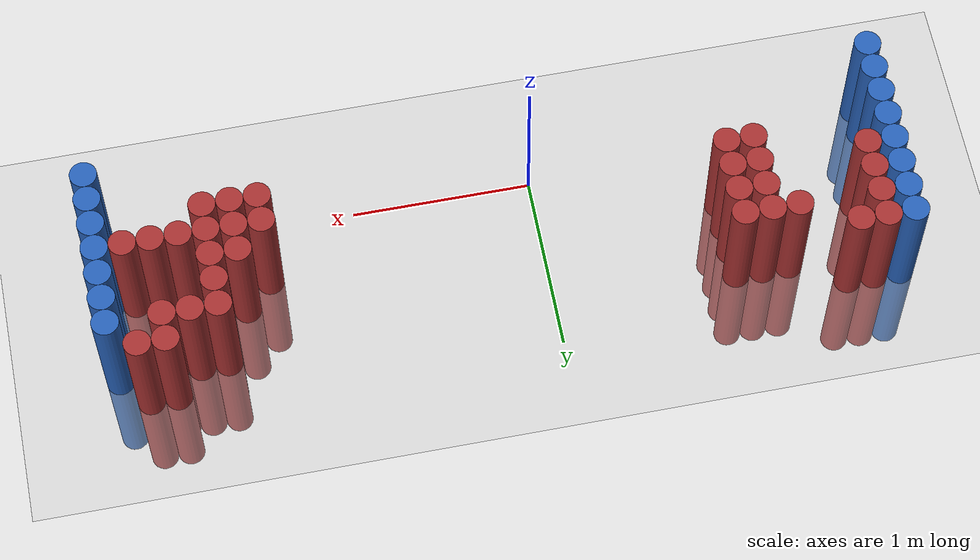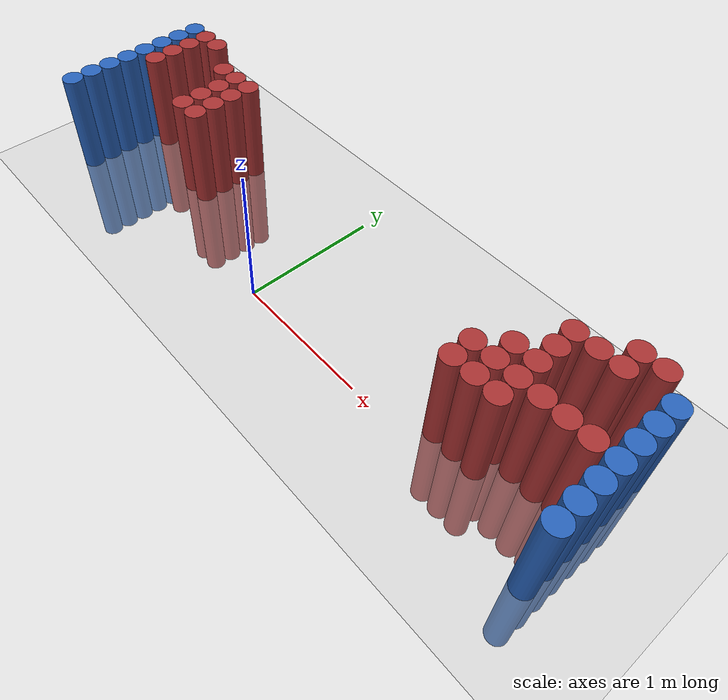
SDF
<sdf version="1.6">
 <world name="default">
  <model name="ground_plane">
   <static>1</static>
   <link name="link">
    <collision name="collision">
     <geometry><plane><normal>0 0 1</normal><size>100 100</size></plane></geometry>
     <surface><friction><ode><mu>100</mu><mu2>50</mu2></ode></friction></surface>
    </collision>
    <visual name="visual">
     <cast_shadows>0</cast_shadows>
     <geometry><plane><normal>0 0 1</normal><size>100 100</size></plane></geometry>
     <material>
      <script><uri>file://media/materials/scripts/gazebo.material</uri><name>Gazebo/Grey</name></script>
     </material>
    </visual>
   </link>
  </model>
  <model name="unit_cylinder_92">
   <static>1</static>
   <pose>2.425000 -0.125000 0.000000 0.000000 0.000000 0.000000</pose>
   <link name="link">
    <inertial>
     <mass>1</mass>
     <inertia><ixx>0.145833</ixx><ixy>0</ixy><ixz>0</ixz><iyy>0.145833</iyy><iyz>0</iyz><izz>0.125</izz></inertia>
    </inertial>
    <collision name="collision">
     <geometry><cylinder><radius>0.075000</radius><length>1.5</length></cylinder></geometry>
    </collision>
    <visual name="visual">
     <geometry><cylinder><radius>0.075000</radius><length>1.5</length></cylinder></geometry>
     <material>
      <ambient>0.152000 0.379000 0.720000 1</ambient>
      <diffuse>0.152000 0.379000 0.720000 1</diffuse>
     </material>
     <material>
      <script><name>Gazebo/Grey</name><uri>file://media/materials/scripts/gazebo.material</uri></script>
     </material>
    </visual>
   </link>
  </model>
  <model name="unit_cylinder_93">
   <static>1</static>
   <pose>-1.925000 -0.125000 0.000000 0.000000 0.000000 0.000000</pose>
   <link name="link">
    <inertial>
     <mass>1</mass>
     <inertia><ixx>0.145833</ixx><ixy>0</ixy><ixz>0</ixz><iyy>0.145833</iyy><iyz>0</iyz><izz>0.125</izz></inertia>
    </inertial>
    <collision name="collision">
     <geometry><cylinder><radius>0.075000</radius><length>1.5</length></cylinder></geometry>
    </collision>
    <visual name="visual">
     <geometry><cylinder><radius>0.075000</radius><length>1.5</length></cylinder></geometry>
     <material>
      <ambient>0.152000 0.379000 0.720000 1</ambient>
      <diffuse>0.152000 0.379000 0.720000 1</diffuse>
     </material>
     <material>
      <script><name>Gazebo/Grey</name><uri>file://media/materials/scripts/gazebo.material</uri></script>
     </material>
    </visual>
   </link>
  </model>
  <model name="unit_cylinder_94">
   <static>1</static>
   <pose>2.425000 0.025000 0.000000 0.000000 0.000000 0.000000</pose>
   <link name="link">
    <inertial>
     <mass>1</mass>
     <inertia><ixx>0.145833</ixx><ixy>0</ixy><ixz>0</ixz><iyy>0.145833</iyy><iyz>0</iyz><izz>0.125</izz></inertia>
    </inertial>
    <collision name="collision">
     <geometry><cylinder><radius>0.075000</radius><length>1.5</length></cylinder></geometry>
    </collision>
    <visual name="visual">
     <geometry><cylinder><radius>0.075000</radius><length>1.5</length></cylinder></geometry>
     <material>
      <ambient>0.152000 0.379000 0.720000 1</ambient>
      <diffuse>0.152000 0.379000 0.720000 1</diffuse>
     </material>
     <material>
      <script><name>Gazebo/Grey</name><uri>file://media/materials/scripts/gazebo.material</uri></script>
     </material>
    </visual>
   </link>
  </model>
  <model name="unit_cylinder_95">
   <static>1</static>
   <pose>-1.925000 0.025000 0.000000 0.000000 0.000000 0.000000</pose>
   <link name="link">
    <inertial>
     <mass>1</mass>
     <inertia><ixx>0.145833</ixx><ixy>0</ixy><ixz>0</ixz><iyy>0.145833</iyy><iyz>0</iyz><izz>0.125</izz></inertia>
    </inertial>
    <collision name="collision">
     <geometry><cylinder><radius>0.075000</radius><length>1.5</length></cylinder></geometry>
    </collision>
    <visual name="visual">
     <geometry><cylinder><radius>0.075000</radius><length>1.5</length></cylinder></geometry>
     <material>
      <ambient>0.152000 0.379000 0.720000 1</ambient>
      <diffuse>0.152000 0.379000 0.720000 1</diffuse>
     </material>
     <material>
      <script><name>Gazebo/Grey</name><uri>file://media/materials/scripts/gazebo.material</uri></script>
     </material>
    </visual>
   </link>
  </model>
  <model name="unit_cylinder_96">
   <static>1</static>
   <pose>-1.925000 0.175000 0.000000 0.000000 0.000000 0.000000</pose>
   <link name="link">
    <inertial>
     <mass>1</mass>
     <inertia><ixx>0.145833</ixx><ixy>0</ixy><ixz>0</ixz><iyy>0.145833</iyy><iyz>0</iyz><izz>0.125</izz></inertia>
    </inertial>
    <collision name="collision">
     <geometry><cylinder><radius>0.075000</radius><length>1.5</length></cylinder></geometry>
    </collision>
    <visual name="visual">
     <geometry><cylinder><radius>0.075000</radius><length>1.5</length></cylinder></geometry>
     <material>
      <ambient>0.152000 0.379000 0.720000 1</ambient>
      <diffuse>0.152000 0.379000 0.720000 1</diffuse>
     </material>
     <material>
      <script><name>Gazebo/Grey</name><uri>file://media/materials/scripts/gazebo.material</uri></script>
     </material>
    </visual>
   </link>
  </model>
  <model name="unit_cylinder_97">
   <static>1</static>
   <pose>-1.925000 0.325000 0.000000 0.000000 0.000000 0.000000</pose>
   <link name="link">
    <inertial>
     <mass>1</mass>
     <inertia><ixx>0.145833</ixx><ixy>0</ixy><ixz>0</ixz><iyy>0.145833</iyy><iyz>0</iyz><izz>0.125</izz></inertia>
    </inertial>
    <collision name="collision">
     <geometry><cylinder><radius>0.075000</radius><length>1.5</length></cylinder></geometry>
    </collision>
    <visual name="visual">
     <geometry><cylinder><radius>0.075000</radius><length>1.5</length></cylinder></geometry>
     <material>
      <ambient>0.152000 0.379000 0.720000 1</ambient>
      <diffuse>0.152000 0.379000 0.720000 1</diffuse>
     </material>
     <material>
      <script><name>Gazebo/Grey</name><uri>file://media/materials/scripts/gazebo.material</uri></script>
     </material>
    </visual>
   </link>
  </model>
  <model name="unit_cylinder_98">
   <static>1</static>
   <pose>-1.925000 0.475000 0.000000 0.000000 0.000000 0.000000</pose>
   <link name="link">
    <inertial>
     <mass>1</mass>
     <inertia><ixx>0.145833</ixx><ixy>0</ixy><ixz>0</ixz><iyy>0.145833</iyy><iyz>0</iyz><izz>0.125</izz></inertia>
    </inertial>
    <collision name="collision">
     <geometry><cylinder><radius>0.075000</radius><length>1.5</length></cylinder></geometry>
    </collision>
    <visual name="visual">
     <geometry><cylinder><radius>0.075000</radius><length>1.5</length></cylinder></geometry>
     <material>
      <ambient>0.152000 0.379000 0.720000 1</ambient>
      <diffuse>0.152000 0.379000 0.720000 1</diffuse>
     </material>
     <material>
      <script><name>Gazebo/Grey</name><uri>file://media/materials/scripts/gazebo.material</uri></script>
     </material>
    </visual>
   </link>
  </model>
  <model name="unit_cylinder_99">
   <static>1</static>
   <pose>-1.925000 0.625000 0.000000 0.000000 0.000000 0.000000</pose>
   <link name="link">
    <inertial>
     <mass>1</mass>
     <inertia><ixx>0.145833</ixx><ixy>0</ixy><ixz>0</ixz><iyy>0.145833</iyy><iyz>0</iyz><izz>0.125</izz></inertia>
    </inertial>
    <collision name="collision">
     <geometry><cylinder><radius>0.075000</radius><length>1.5</length></cylinder></geometry>
    </collision>
    <visual name="visual">
     <geometry><cylinder><radius>0.075000</radius><length>1.5</length></cylinder></geometry>
     <material>
      <ambient>0.152000 0.379000 0.720000 1</ambient>
      <diffuse>0.152000 0.379000 0.720000 1</diffuse>
     </material>
     <material>
      <script><name>Gazebo/Grey</name><uri>file://media/materials/scripts/gazebo.material</uri></script>
     </material>
    </visual>
   </link>
  </model>
  <model name="unit_cylinder_100">
   <static>1</static>
   <pose>-1.925000 0.775000 0.000000 0.000000 0.000000 0.000000</pose>
   <link name="link">
    <inertial>
     <mass>1</mass>
     <inertia><ixx>0.145833</ixx><ixy>0</ixy><ixz>0</ixz><iyy>0.145833</iyy><iyz>0</iyz><izz>0.125</izz></inertia>
    </inertial>
    <collision name="collision">
     <geometry><cylinder><radius>0.075000</radius><length>1.5</length></cylinder></geometry>
    </collision>
    <visual name="visual">
     <geometry><cylinder><radius>0.075000</radius><length>1.5</length></cylinder></geometry>
     <material>
      <ambient>0.152000 0.379000 0.720000 1</ambient>
      <diffuse>0.152000 0.379000 0.720000 1</diffuse>
     </material>
     <material>
      <script><name>Gazebo/Grey</name><uri>file://media/materials/scripts/gazebo.material</uri></script>
     </material>
    </visual>
   </link>
  </model>
  <model name="unit_cylinder_101">
   <static>1</static>
   <pose>-1.925000 0.925000 0.000000 0.000000 0.000000 0.000000</pose>
   <link name="link">
    <inertial>
     <mass>1</mass>
     <inertia><ixx>0.145833</ixx><ixy>0</ixy><ixz>0</ixz><iyy>0.145833</iyy><iyz>0</iyz><izz>0.125</izz></inertia>
    </inertial>
    <collision name="collision">
     <geometry><cylinder><radius>0.075000</radius><length>1.5</length></cylinder></geometry>
    </collision>
    <visual name="visual">
     <geometry><cylinder><radius>0.075000</radius><length>1.5</length></cylinder></geometry>
     <material>
      <ambient>0.152000 0.379000 0.720000 1</ambient>
      <diffuse>0.152000 0.379000 0.720000 1</diffuse>
     </material>
     <material>
      <script><name>Gazebo/Grey</name><uri>file://media/materials/scripts/gazebo.material</uri></script>
     </material>
    </visual>
   </link>
  </model>
  <model name="unit_cylinder_126">
   <static>1</static>
   <pose>-1.775000 0.475000 0.000000 0.000000 0.000000 0.000000</pose>
   <link name="link">
    <inertial>
     <mass>1</mass>
     <inertia><ixx>0.145833</ixx><ixy>0</ixy><ixz>0</ixz><iyy>0.145833</iyy><iyz>0</iyz><izz>0.125</izz></inertia>
    </inertial>
    <collision name="collision">
     <geometry><cylinder><radius>0.075000</radius><length>1.5</length></cylinder></geometry>
    </collision>
    <visual name="visual">
     <geometry><cylinder><radius>0.075000</radius><length>1.5</length></cylinder></geometry>
     <material>
      <ambient>0.648000 0.192000 0.192000 1</ambient>
      <diffuse>0.648000 0.192000 0.192000 1</diffuse>
     </material>
     <material>
      <script><name>Gazebo/Grey</name><uri>file://media/materials/scripts/gazebo.material</uri></script>
     </material>
    </visual>
   </link>
  </model>
  <model name="unit_cylinder_127">
   <static>1</static>
   <pose>-1.775000 0.625000 0.000000 0.000000 0.000000 0.000000</pose>
   <link name="link">
    <inertial>
     <mass>1</mass>
     <inertia><ixx>0.145833</ixx><ixy>0</ixy><ixz>0</ixz><iyy>0.145833</iyy><iyz>0</iyz><izz>0.125</izz></inertia>
    </inertial>
    <collision name="collision">
     <geometry><cylinder><radius>0.075000</radius><length>1.5</length></cylinder></geometry>
    </collision>
    <visual name="visual">
     <geometry><cylinder><radius>0.075000</radius><length>1.5</length></cylinder></geometry>
     <material>
      <ambient>0.648000 0.192000 0.192000 1</ambient>
      <diffuse>0.648000 0.192000 0.192000 1</diffuse>
     </material>
     <material>
      <script><name>Gazebo/Grey</name><uri>file://media/materials/scripts/gazebo.material</uri></script>
     </material>
    </visual>
   </link>
  </model>
  <model name="unit_cylinder_128">
   <static>1</static>
   <pose>-1.775000 0.775000 0.000000 0.000000 0.000000 0.000000</pose>
   <link name="link">
    <inertial>
     <mass>1</mass>
     <inertia><ixx>0.145833</ixx><ixy>0</ixy><ixz>0</ixz><iyy>0.145833</iyy><iyz>0</iyz><izz>0.125</izz></inertia>
    </inertial>
    <collision name="collision">
     <geometry><cylinder><radius>0.075000</radius><length>1.5</length></cylinder></geometry>
    </collision>
    <visual name="visual">
     <geometry><cylinder><radius>0.075000</radius><length>1.5</length></cylinder></geometry>
     <material>
      <ambient>0.648000 0.192000 0.192000 1</ambient>
      <diffuse>0.648000 0.192000 0.192000 1</diffuse>
     </material>
     <material>
      <script><name>Gazebo/Grey</name><uri>file://media/materials/scripts/gazebo.material</uri></script>
     </material>
    </visual>
   </link>
  </model>
  <model name="unit_cylinder_129">
   <static>1</static>
   <pose>-1.775000 0.925000 0.000000 0.000000 0.000000 0.000000</pose>
   <link name="link">
    <inertial>
     <mass>1</mass>
     <inertia><ixx>0.145833</ixx><ixy>0</ixy><ixz>0</ixz><iyy>0.145833</iyy><iyz>0</iyz><izz>0.125</izz></inertia>
    </inertial>
    <collision name="collision">
     <geometry><cylinder><radius>0.075000</radius><length>1.5</length></cylinder></geometry>
    </collision>
    <visual name="visual">
     <geometry><cylinder><radius>0.075000</radius><length>1.5</length></cylinder></geometry>
     <material>
      <ambient>0.648000 0.192000 0.192000 1</ambient>
      <diffuse>0.648000 0.192000 0.192000 1</diffuse>
     </material>
     <material>
      <script><name>Gazebo/Grey</name><uri>file://media/materials/scripts/gazebo.material</uri></script>
     </material>
    </visual>
   </link>
  </model>
  <model name="unit_cylinder_138">
   <static>1</static>
   <pose>-1.625000 0.925000 0.000000 0.000000 0.000000 0.000000</pose>
   <link name="link">
    <inertial>
     <mass>1</mass>
     <inertia><ixx>0.145833</ixx><ixy>0</ixy><ixz>0</ixz><iyy>0.145833</iyy><iyz>0</iyz><izz>0.125</izz></inertia>
    </inertial>
    <collision name="collision">
     <geometry><cylinder><radius>0.075000</radius><length>1.5</length></cylinder></geometry>
    </collision>
    <visual name="visual">
     <geometry><cylinder><radius>0.075000</radius><length>1.5</length></cylinder></geometry>
     <material>
      <ambient>0.648000 0.192000 0.192000 1</ambient>
      <diffuse>0.648000 0.192000 0.192000 1</diffuse>
     </material>
     <material>
      <script><name>Gazebo/Grey</name><uri>file://media/materials/scripts/gazebo.material</uri></script>
     </material>
    </visual>
   </link>
  </model>
  <model name="unit_cylinder_148">
   <static>1</static>
   <pose>-1.325000 0.775000 0.000000 0.000000 0.000000 0.000000</pose>
   <link name="link">
    <inertial>
     <mass>1</mass>
     <inertia><ixx>0.145833</ixx><ixy>0</ixy><ixz>0</ixz><iyy>0.145833</iyy><iyz>0</iyz><izz>0.125</izz></inertia>
    </inertial>
    <collision name="collision">
     <geometry><cylinder><radius>0.075000</radius><length>1.5</length></cylinder></geometry>
    </collision>
    <visual name="visual">
     <geometry><cylinder><radius>0.075000</radius><length>1.5</length></cylinder></geometry>
     <material>
      <ambient>0.648000 0.192000 0.192000 1</ambient>
      <diffuse>0.648000 0.192000 0.192000 1</diffuse>
     </material>
     <material>
      <script><name>Gazebo/Grey</name><uri>file://media/materials/scripts/gazebo.material</uri></script>
     </material>
    </visual>
   </link>
  </model>
  <model name="unit_cylinder_151">
   <static>1</static>
   <pose>-1.175000 0.325000 0.000000 0.000000 0.000000 0.000000</pose>
   <link name="link">
    <inertial>
     <mass>1</mass>
     <inertia><ixx>0.145833</ixx><ixy>0</ixy><ixz>0</ixz><iyy>0.145833</iyy><iyz>0</iyz><izz>0.125</izz></inertia>
    </inertial>
    <collision name="collision">
     <geometry><cylinder><radius>0.075000</radius><length>1.5</length></cylinder></geometry>
    </collision>
    <visual name="visual">
     <geometry><cylinder><radius>0.075000</radius><length>1.5</length></cylinder></geometry>
     <material>
      <ambient>0.648000 0.192000 0.192000 1</ambient>
      <diffuse>0.648000 0.192000 0.192000 1</diffuse>
     </material>
     <material>
      <script><name>Gazebo/Grey</name><uri>file://media/materials/scripts/gazebo.material</uri></script>
     </material>
    </visual>
   </link>
  </model>
  <model name="unit_cylinder_152">
   <static>1</static>
   <pose>-1.175000 0.475000 0.000000 0.000000 0.000000 0.000000</pose>
   <link name="link">
    <inertial>
     <mass>1</mass>
     <inertia><ixx>0.145833</ixx><ixy>0</ixy><ixz>0</ixz><iyy>0.145833</iyy><iyz>0</iyz><izz>0.125</izz></inertia>
    </inertial>
    <collision name="collision">
     <geometry><cylinder><radius>0.075000</radius><length>1.5</length></cylinder></geometry>
    </collision>
    <visual name="visual">
     <geometry><cylinder><radius>0.075000</radius><length>1.5</length></cylinder></geometry>
     <material>
      <ambient>0.648000 0.192000 0.192000 1</ambient>
      <diffuse>0.648000 0.192000 0.192000 1</diffuse>
     </material>
     <material>
      <script><name>Gazebo/Grey</name><uri>file://media/materials/scripts/gazebo.material</uri></script>
     </material>
    </visual>
   </link>
  </model>
  <model name="unit_cylinder_153">
   <static>1</static>
   <pose>-1.175000 0.625000 0.000000 0.000000 0.000000 0.000000</pose>
   <link name="link">
    <inertial>
     <mass>1</mass>
     <inertia><ixx>0.145833</ixx><ixy>0</ixy><ixz>0</ixz><iyy>0.145833</iyy><iyz>0</iyz><izz>0.125</izz></inertia>
    </inertial>
    <collision name="collision">
     <geometry><cylinder><radius>0.075000</radius><length>1.5</length></cylinder></geometry>
    </collision>
    <visual name="visual">
     <geometry><cylinder><radius>0.075000</radius><length>1.5</length></cylinder></geometry>
     <material>
      <ambient>0.648000 0.192000 0.192000 1</ambient>
      <diffuse>0.648000 0.192000 0.192000 1</diffuse>
     </material>
     <material>
      <script><name>Gazebo/Grey</name><uri>file://media/materials/scripts/gazebo.material</uri></script>
     </material>
    </visual>
   </link>
  </model>
  <model name="unit_cylinder_154">
   <static>1</static>
   <pose>-1.175000 0.775000 0.000000 0.000000 0.000000 0.000000</pose>
   <link name="link">
    <inertial>
     <mass>1</mass>
     <inertia><ixx>0.145833</ixx><ixy>0</ixy><ixz>0</ixz><iyy>0.145833</iyy><iyz>0</iyz><izz>0.125</izz></inertia>
    </inertial>
    <collision name="collision">
     <geometry><cylinder><radius>0.075000</radius><length>1.5</length></cylinder></geometry>
    </collision>
    <visual name="visual">
     <geometry><cylinder><radius>0.075000</radius><length>1.5</length></cylinder></geometry>
     <material>
      <ambient>0.648000 0.192000 0.192000 1</ambient>
      <diffuse>0.648000 0.192000 0.192000 1</diffuse>
     </material>
     <material>
      <script><name>Gazebo/Grey</name><uri>file://media/materials/scripts/gazebo.material</uri></script>
     </material>
    </visual>
   </link>
  </model>
  <model name="unit_cylinder_158">
   <static>1</static>
   <pose>-1.025000 0.325000 0.000000 0.000000 0.000000 0.000000</pose>
   <link name="link">
    <inertial>
     <mass>1</mass>
     <inertia><ixx>0.145833</ixx><ixy>0</ixy><ixz>0</ixz><iyy>0.145833</iyy><iyz>0</iyz><izz>0.125</izz></inertia>
    </inertial>
    <collision name="collision">
     <geometry><cylinder><radius>0.075000</radius><length>1.5</length></cylinder></geometry>
    </collision>
    <visual name="visual">
     <geometry><cylinder><radius>0.075000</radius><length>1.5</length></cylinder></geometry>
     <material>
      <ambient>0.648000 0.192000 0.192000 1</ambient>
      <diffuse>0.648000 0.192000 0.192000 1</diffuse>
     </material>
     <material>
      <script><name>Gazebo/Grey</name><uri>file://media/materials/scripts/gazebo.material</uri></script>
     </material>
    </visual>
   </link>
  </model>
  <model name="unit_cylinder_159">
   <static>1</static>
   <pose>-1.025000 0.475000 0.000000 0.000000 0.000000 0.000000</pose>
   <link name="link">
    <inertial>
     <mass>1</mass>
     <inertia><ixx>0.145833</ixx><ixy>0</ixy><ixz>0</ixz><iyy>0.145833</iyy><iyz>0</iyz><izz>0.125</izz></inertia>
    </inertial>
    <collision name="collision">
     <geometry><cylinder><radius>0.075000</radius><length>1.5</length></cylinder></geometry>
    </collision>
    <visual name="visual">
     <geometry><cylinder><radius>0.075000</radius><length>1.5</length></cylinder></geometry>
     <material>
      <ambient>0.648000 0.192000 0.192000 1</ambient>
      <diffuse>0.648000 0.192000 0.192000 1</diffuse>
     </material>
     <material>
      <script><name>Gazebo/Grey</name><uri>file://media/materials/scripts/gazebo.material</uri></script>
     </material>
    </visual>
   </link>
  </model>
  <model name="unit_cylinder_160">
   <static>1</static>
   <pose>-1.025000 0.625000 0.000000 0.000000 0.000000 0.000000</pose>
   <link name="link">
    <inertial>
     <mass>1</mass>
     <inertia><ixx>0.145833</ixx><ixy>0</ixy><ixz>0</ixz><iyy>0.145833</iyy><iyz>0</iyz><izz>0.125</izz></inertia>
    </inertial>
    <collision name="collision">
     <geometry><cylinder><radius>0.075000</radius><length>1.5</length></cylinder></geometry>
    </collision>
    <visual name="visual">
     <geometry><cylinder><radius>0.075000</radius><length>1.5</length></cylinder></geometry>
     <material>
      <ambient>0.648000 0.192000 0.192000 1</ambient>
      <diffuse>0.648000 0.192000 0.192000 1</diffuse>
     </material>
     <material>
      <script><name>Gazebo/Grey</name><uri>file://media/materials/scripts/gazebo.material</uri></script>
     </material>
    </visual>
   </link>
  </model>
  <model name="unit_cylinder_161">
   <static>1</static>
   <pose>-1.025000 0.775000 0.000000 0.000000 0.000000 0.000000</pose>
   <link name="link">
    <inertial>
     <mass>1</mass>
     <inertia><ixx>0.145833</ixx><ixy>0</ixy><ixz>0</ixz><iyy>0.145833</iyy><iyz>0</iyz><izz>0.125</izz></inertia>
    </inertial>
    <collision name="collision">
     <geometry><cylinder><radius>0.075000</radius><length>1.5</length></cylinder></geometry>
    </collision>
    <visual name="visual">
     <geometry><cylinder><radius>0.075000</radius><length>1.5</length></cylinder></geometry>
     <material>
      <ambient>0.648000 0.192000 0.192000 1</ambient>
      <diffuse>0.648000 0.192000 0.192000 1</diffuse>
     </material>
     <material>
      <script><name>Gazebo/Grey</name><uri>file://media/materials/scripts/gazebo.material</uri></script>
     </material>
    </visual>
   </link>
  </model>
  <model name="unit_cylinder_199">
   <static>1</static>
   <pose>1.525000 0.175000 0.000000 0.000000 0.000000 0.000000</pose>
   <link name="link">
    <inertial>
     <mass>1</mass>
     <inertia><ixx>0.145833</ixx><ixy>0</ixy><ixz>0</ixz><iyy>0.145833</iyy><iyz>0</iyz><izz>0.125</izz></inertia>
    </inertial>
    <collision name="collision">
     <geometry><cylinder><radius>0.075000</radius><length>1.5</length></cylinder></geometry>
    </collision>
    <visual name="visual">
     <geometry><cylinder><radius>0.075000</radius><length>1.5</length></cylinder></geometry>
     <material>
      <ambient>0.648000 0.192000 0.192000 1</ambient>
      <diffuse>0.648000 0.192000 0.192000 1</diffuse>
     </material>
     <material>
      <script><name>Gazebo/Grey</name><uri>file://media/materials/scripts/gazebo.material</uri></script>
     </material>
    </visual>
   </link>
  </model>
  <model name="unit_cylinder_200">
   <static>1</static>
   <pose>1.525000 0.325000 0.000000 0.000000 0.000000 0.000000</pose>
   <link name="link">
    <inertial>
     <mass>1</mass>
     <inertia><ixx>0.145833</ixx><ixy>0</ixy><ixz>0</ixz><iyy>0.145833</iyy><iyz>0</iyz><izz>0.125</izz></inertia>
    </inertial>
    <collision name="collision">
     <geometry><cylinder><radius>0.075000</radius><length>1.5</length></cylinder></geometry>
    </collision>
    <visual name="visual">
     <geometry><cylinder><radius>0.075000</radius><length>1.5</length></cylinder></geometry>
     <material>
      <ambient>0.648000 0.192000 0.192000 1</ambient>
      <diffuse>0.648000 0.192000 0.192000 1</diffuse>
     </material>
     <material>
      <script><name>Gazebo/Grey</name><uri>file://media/materials/scripts/gazebo.material</uri></script>
     </material>
    </visual>
   </link>
  </model>
  <model name="unit_cylinder_205">
   <static>1</static>
   <pose>1.675000 0.175000 0.000000 0.000000 0.000000 0.000000</pose>
   <link name="link">
    <inertial>
     <mass>1</mass>
     <inertia><ixx>0.145833</ixx><ixy>0</ixy><ixz>0</ixz><iyy>0.145833</iyy><iyz>0</iyz><izz>0.125</izz></inertia>
    </inertial>
    <collision name="collision">
     <geometry><cylinder><radius>0.075000</radius><length>1.5</length></cylinder></geometry>
    </collision>
    <visual name="visual">
     <geometry><cylinder><radius>0.075000</radius><length>1.5</length></cylinder></geometry>
     <material>
      <ambient>0.648000 0.192000 0.192000 1</ambient>
      <diffuse>0.648000 0.192000 0.192000 1</diffuse>
     </material>
     <material>
      <script><name>Gazebo/Grey</name><uri>file://media/materials/scripts/gazebo.material</uri></script>
     </material>
    </visual>
   </link>
  </model>
  <model name="unit_cylinder_206">
   <static>1</static>
   <pose>1.675000 0.325000 0.000000 0.000000 0.000000 0.000000</pose>
   <link name="link">
    <inertial>
     <mass>1</mass>
     <inertia><ixx>0.145833</ixx><ixy>0</ixy><ixz>0</ixz><iyy>0.145833</iyy><iyz>0</iyz><izz>0.125</izz></inertia>
    </inertial>
    <collision name="collision">
     <geometry><cylinder><radius>0.075000</radius><length>1.5</length></cylinder></geometry>
    </collision>
    <visual name="visual">
     <geometry><cylinder><radius>0.075000</radius><length>1.5</length></cylinder></geometry>
     <material>
      <ambient>0.648000 0.192000 0.192000 1</ambient>
      <diffuse>0.648000 0.192000 0.192000 1</diffuse>
     </material>
     <material>
      <script><name>Gazebo/Grey</name><uri>file://media/materials/scripts/gazebo.material</uri></script>
     </material>
    </visual>
   </link>
  </model>
  <model name="unit_cylinder_207">
   <static>1</static>
   <pose>1.675000 0.475000 0.000000 0.000000 0.000000 0.000000</pose>
   <link name="link">
    <inertial>
     <mass>1</mass>
     <inertia><ixx>0.145833</ixx><ixy>0</ixy><ixz>0</ixz><iyy>0.145833</iyy><iyz>0</iyz><izz>0.125</izz></inertia>
    </inertial>
    <collision name="collision">
     <geometry><cylinder><radius>0.075000</radius><length>1.5</length></cylinder></geometry>
    </collision>
    <visual name="visual">
     <geometry><cylinder><radius>0.075000</radius><length>1.5</length></cylinder></geometry>
     <material>
      <ambient>0.648000 0.192000 0.192000 1</ambient>
      <diffuse>0.648000 0.192000 0.192000 1</diffuse>
     </material>
     <material>
      <script><name>Gazebo/Grey</name><uri>file://media/materials/scripts/gazebo.material</uri></script>
     </material>
    </visual>
   </link>
  </model>
  <model name="unit_cylinder_211">
   <static>1</static>
   <pose>1.825000 0.175000 0.000000 0.000000 0.000000 0.000000</pose>
   <link name="link">
    <inertial>
     <mass>1</mass>
     <inertia><ixx>0.145833</ixx><ixy>0</ixy><ixz>0</ixz><iyy>0.145833</iyy><iyz>0</iyz><izz>0.125</izz></inertia>
    </inertial>
    <collision name="collision">
     <geometry><cylinder><radius>0.075000</radius><length>1.5</length></cylinder></geometry>
    </collision>
    <visual name="visual">
     <geometry><cylinder><radius>0.075000</radius><length>1.5</length></cylinder></geometry>
     <material>
      <ambient>0.648000 0.192000 0.192000 1</ambient>
      <diffuse>0.648000 0.192000 0.192000 1</diffuse>
     </material>
     <material>
      <script><name>Gazebo/Grey</name><uri>file://media/materials/scripts/gazebo.material</uri></script>
     </material>
    </visual>
   </link>
  </model>
  <model name="unit_cylinder_212">
   <static>1</static>
   <pose>1.825000 0.325000 0.000000 0.000000 0.000000 0.000000</pose>
   <link name="link">
    <inertial>
     <mass>1</mass>
     <inertia><ixx>0.145833</ixx><ixy>0</ixy><ixz>0</ixz><iyy>0.145833</iyy><iyz>0</iyz><izz>0.125</izz></inertia>
    </inertial>
    <collision name="collision">
     <geometry><cylinder><radius>0.075000</radius><length>1.5</length></cylinder></geometry>
    </collision>
    <visual name="visual">
     <geometry><cylinder><radius>0.075000</radius><length>1.5</length></cylinder></geometry>
     <material>
      <ambient>0.648000 0.192000 0.192000 1</ambient>
      <diffuse>0.648000 0.192000 0.192000 1</diffuse>
     </material>
     <material>
      <script><name>Gazebo/Grey</name><uri>file://media/materials/scripts/gazebo.material</uri></script>
     </material>
    </visual>
   </link>
  </model>
  <model name="unit_cylinder_213">
   <static>1</static>
   <pose>1.825000 0.475000 0.000000 0.000000 0.000000 0.000000</pose>
   <link name="link">
    <inertial>
     <mass>1</mass>
     <inertia><ixx>0.145833</ixx><ixy>0</ixy><ixz>0</ixz><iyy>0.145833</iyy><iyz>0</iyz><izz>0.125</izz></inertia>
    </inertial>
    <collision name="collision">
     <geometry><cylinder><radius>0.075000</radius><length>1.5</length></cylinder></geometry>
    </collision>
    <visual name="visual">
     <geometry><cylinder><radius>0.075000</radius><length>1.5</length></cylinder></geometry>
     <material>
      <ambient>0.648000 0.192000 0.192000 1</ambient>
      <diffuse>0.648000 0.192000 0.192000 1</diffuse>
     </material>
     <material>
      <script><name>Gazebo/Grey</name><uri>file://media/materials/scripts/gazebo.material</uri></script>
     </material>
    </visual>
   </link>
  </model>
  <model name="unit_cylinder_214">
   <static>1</static>
   <pose>1.825000 0.625000 0.000000 0.000000 0.000000 0.000000</pose>
   <link name="link">
    <inertial>
     <mass>1</mass>
     <inertia><ixx>0.145833</ixx><ixy>0</ixy><ixz>0</ixz><iyy>0.145833</iyy><iyz>0</iyz><izz>0.125</izz></inertia>
    </inertial>
    <collision name="collision">
     <geometry><cylinder><radius>0.075000</radius><length>1.5</length></cylinder></geometry>
    </collision>
    <visual name="visual">
     <geometry><cylinder><radius>0.075000</radius><length>1.5</length></cylinder></geometry>
     <material>
      <ambient>0.648000 0.192000 0.192000 1</ambient>
      <diffuse>0.648000 0.192000 0.192000 1</diffuse>
     </material>
     <material>
      <script><name>Gazebo/Grey</name><uri>file://media/materials/scripts/gazebo.material</uri></script>
     </material>
    </visual>
   </link>
  </model>
  <model name="unit_cylinder_215">
   <static>1</static>
   <pose>1.825000 0.775000 0.000000 0.000000 0.000000 0.000000</pose>
   <link name="link">
    <inertial>
     <mass>1</mass>
     <inertia><ixx>0.145833</ixx><ixy>0</ixy><ixz>0</ixz><iyy>0.145833</iyy><iyz>0</iyz><izz>0.125</izz></inertia>
    </inertial>
    <collision name="collision">
     <geometry><cylinder><radius>0.075000</radius><length>1.5</length></cylinder></geometry>
    </collision>
    <visual name="visual">
     <geometry><cylinder><radius>0.075000</radius><length>1.5</length></cylinder></geometry>
     <material>
      <ambient>0.648000 0.192000 0.192000 1</ambient>
      <diffuse>0.648000 0.192000 0.192000 1</diffuse>
     </material>
     <material>
      <script><name>Gazebo/Grey</name><uri>file://media/materials/scripts/gazebo.material</uri></script>
     </material>
    </visual>
   </link>
  </model>
  <model name="unit_cylinder_216">
   <static>1</static>
   <pose>1.975000 0.325000 0.000000 0.000000 0.000000 0.000000</pose>
   <link name="link">
    <inertial>
     <mass>1</mass>
     <inertia><ixx>0.145833</ixx><ixy>0</ixy><ixz>0</ixz><iyy>0.145833</iyy><iyz>0</iyz><izz>0.125</izz></inertia>
    </inertial>
    <collision name="collision">
     <geometry><cylinder><radius>0.075000</radius><length>1.5</length></cylinder></geometry>
    </collision>
    <visual name="visual">
     <geometry><cylinder><radius>0.075000</radius><length>1.5</length></cylinder></geometry>
     <material>
      <ambient>0.648000 0.192000 0.192000 1</ambient>
      <diffuse>0.648000 0.192000 0.192000 1</diffuse>
     </material>
     <material>
      <script><name>Gazebo/Grey</name><uri>file://media/materials/scripts/gazebo.material</uri></script>
     </material>
    </visual>
   </link>
  </model>
  <model name="unit_cylinder_217">
   <static>1</static>
   <pose>1.975000 0.775000 0.000000 0.000000 0.000000 0.000000</pose>
   <link name="link">
    <inertial>
     <mass>1</mass>
     <inertia><ixx>0.145833</ixx><ixy>0</ixy><ixz>0</ixz><iyy>0.145833</iyy><iyz>0</iyz><izz>0.125</izz></inertia>
    </inertial>
    <collision name="collision">
     <geometry><cylinder><radius>0.075000</radius><length>1.5</length></cylinder></geometry>
    </collision>
    <visual name="visual">
     <geometry><cylinder><radius>0.075000</radius><length>1.5</length></cylinder></geometry>
     <material>
      <ambient>0.648000 0.192000 0.192000 1</ambient>
      <diffuse>0.648000 0.192000 0.192000 1</diffuse>
     </material>
     <material>
      <script><name>Gazebo/Grey</name><uri>file://media/materials/scripts/gazebo.material</uri></script>
     </material>
    </visual>
   </link>
  </model>
  <model name="unit_cylinder_220">
   <static>1</static>
   <pose>2.125000 0.325000 0.000000 0.000000 0.000000 0.000000</pose>
   <link name="link">
    <inertial>
     <mass>1</mass>
     <inertia><ixx>0.145833</ixx><ixy>0</ixy><ixz>0</ixz><iyy>0.145833</iyy><iyz>0</iyz><izz>0.125</izz></inertia>
    </inertial>
    <collision name="collision">
     <geometry><cylinder><radius>0.075000</radius><length>1.5</length></cylinder></geometry>
    </collision>
    <visual name="visual">
     <geometry><cylinder><radius>0.075000</radius><length>1.5</length></cylinder></geometry>
     <material>
      <ambient>0.648000 0.192000 0.192000 1</ambient>
      <diffuse>0.648000 0.192000 0.192000 1</diffuse>
     </material>
     <material>
      <script><name>Gazebo/Grey</name><uri>file://media/materials/scripts/gazebo.material</uri></script>
     </material>
    </visual>
   </link>
  </model>
  <model name="unit_cylinder_221">
   <static>1</static>
   <pose>2.125000 0.775000 0.000000 0.000000 0.000000 0.000000</pose>
   <link name="link">
    <inertial>
     <mass>1</mass>
     <inertia><ixx>0.145833</ixx><ixy>0</ixy><ixz>0</ixz><iyy>0.145833</iyy><iyz>0</iyz><izz>0.125</izz></inertia>
    </inertial>
    <collision name="collision">
     <geometry><cylinder><radius>0.075000</radius><length>1.5</length></cylinder></geometry>
    </collision>
    <visual name="visual">
     <geometry><cylinder><radius>0.075000</radius><length>1.5</length></cylinder></geometry>
     <material>
      <ambient>0.648000 0.192000 0.192000 1</ambient>
      <diffuse>0.648000 0.192000 0.192000 1</diffuse>
     </material>
     <material>
      <script><name>Gazebo/Grey</name><uri>file://media/materials/scripts/gazebo.material</uri></script>
     </material>
    </visual>
   </link>
  </model>
  <model name="unit_cylinder_222">
   <static>1</static>
   <pose>2.125000 0.925000 0.000000 0.000000 0.000000 0.000000</pose>
   <link name="link">
    <inertial>
     <mass>1</mass>
     <inertia><ixx>0.145833</ixx><ixy>0</ixy><ixz>0</ixz><iyy>0.145833</iyy><iyz>0</iyz><izz>0.125</izz></inertia>
    </inertial>
    <collision name="collision">
     <geometry><cylinder><radius>0.075000</radius><length>1.5</length></cylinder></geometry>
    </collision>
    <visual name="visual">
     <geometry><cylinder><radius>0.075000</radius><length>1.5</length></cylinder></geometry>
     <material>
      <ambient>0.648000 0.192000 0.192000 1</ambient>
      <diffuse>0.648000 0.192000 0.192000 1</diffuse>
     </material>
     <material>
      <script><name>Gazebo/Grey</name><uri>file://media/materials/scripts/gazebo.material</uri></script>
     </material>
    </visual>
   </link>
  </model>
  <model name="unit_cylinder_229">
   <static>1</static>
   <pose>2.275000 0.325000 0.000000 0.000000 0.000000 0.000000</pose>
   <link name="link">
    <inertial>
     <mass>1</mass>
     <inertia><ixx>0.145833</ixx><ixy>0</ixy><ixz>0</ixz><iyy>0.145833</iyy><iyz>0</iyz><izz>0.125</izz></inertia>
    </inertial>
    <collision name="collision">
     <geometry><cylinder><radius>0.075000</radius><length>1.5</length></cylinder></geometry>
    </collision>
    <visual name="visual">
     <geometry><cylinder><radius>0.075000</radius><length>1.5</length></cylinder></geometry>
     <material>
      <ambient>0.648000 0.192000 0.192000 1</ambient>
      <diffuse>0.648000 0.192000 0.192000 1</diffuse>
     </material>
     <material>
      <script><name>Gazebo/Grey</name><uri>file://media/materials/scripts/gazebo.material</uri></script>
     </material>
    </visual>
   </link>
  </model>
  <model name="unit_cylinder_230">
   <static>1</static>
   <pose>2.275000 0.925000 0.000000 0.000000 0.000000 0.000000</pose>
   <link name="link">
    <inertial>
     <mass>1</mass>
     <inertia><ixx>0.145833</ixx><ixy>0</ixy><ixz>0</ixz><iyy>0.145833</iyy><iyz>0</iyz><izz>0.125</izz></inertia>
    </inertial>
    <collision name="collision">
     <geometry><cylinder><radius>0.075000</radius><length>1.5</length></cylinder></geometry>
    </collision>
    <visual name="visual">
     <geometry><cylinder><radius>0.075000</radius><length>1.5</length></cylinder></geometry>
     <material>
      <ambient>0.648000 0.192000 0.192000 1</ambient>
      <diffuse>0.648000 0.192000 0.192000 1</diffuse>
     </material>
     <material>
      <script><name>Gazebo/Grey</name><uri>file://media/materials/scripts/gazebo.material</uri></script>
     </material>
    </visual>
   </link>
  </model>
  <model name="unit_cylinder_246">
   <static>1</static>
   <pose>2.425000 0.175000 0.000000 0.000000 0.000000 0.000000</pose>
   <link name="link">
    <inertial>
     <mass>1</mass>
     <inertia><ixx>0.145833</ixx><ixy>0</ixy><ixz>0</ixz><iyy>0.145833</iyy><iyz>0</iyz><izz>0.125</izz></inertia>
    </inertial>
    <collision name="collision">
     <geometry><cylinder><radius>0.075000</radius><length>1.5</length></cylinder></geometry>
    </collision>
    <visual name="visual">
     <geometry><cylinder><radius>0.075000</radius><length>1.5</length></cylinder></geometry>
     <material>
      <ambient>0.152000 0.379000 0.720000 1</ambient>
      <diffuse>0.152000 0.379000 0.720000 1</diffuse>
     </material>
     <material>
      <script><name>Gazebo/Grey</name><uri>file://media/materials/scripts/gazebo.material</uri></script>
     </material>
    </visual>
   </link>
  </model>
  <model name="unit_cylinder_247">
   <static>1</static>
   <pose>2.425000 0.325000 0.000000 0.000000 0.000000 0.000000</pose>
   <link name="link">
    <inertial>
     <mass>1</mass>
     <inertia><ixx>0.145833</ixx><ixy>0</ixy><ixz>0</ixz><iyy>0.145833</iyy><iyz>0</iyz><izz>0.125</izz></inertia>
    </inertial>
    <collision name="collision">
     <geometry><cylinder><radius>0.075000</radius><length>1.5</length></cylinder></geometry>
    </collision>
    <visual name="visual">
     <geometry><cylinder><radius>0.075000</radius><length>1.5</length></cylinder></geometry>
     <material>
      <ambient>0.152000 0.379000 0.720000 1</ambient>
      <diffuse>0.152000 0.379000 0.720000 1</diffuse>
     </material>
     <material>
      <script><name>Gazebo/Grey</name><uri>file://media/materials/scripts/gazebo.material</uri></script>
     </material>
    </visual>
   </link>
  </model>
  <model name="unit_cylinder_248">
   <static>1</static>
   <pose>2.425000 0.475000 0.000000 0.000000 0.000000 0.000000</pose>
   <link name="link">
    <inertial>
     <mass>1</mass>
     <inertia><ixx>0.145833</ixx><ixy>0</ixy><ixz>0</ixz><iyy>0.145833</iyy><iyz>0</iyz><izz>0.125</izz></inertia>
    </inertial>
    <collision name="collision">
     <geometry><cylinder><radius>0.075000</radius><length>1.5</length></cylinder></geometry>
    </collision>
    <visual name="visual">
     <geometry><cylinder><radius>0.075000</radius><length>1.5</length></cylinder></geometry>
     <material>
      <ambient>0.152000 0.379000 0.720000 1</ambient>
      <diffuse>0.152000 0.379000 0.720000 1</diffuse>
     </material>
     <material>
      <script><name>Gazebo/Grey</name><uri>file://media/materials/scripts/gazebo.material</uri></script>
     </material>
    </visual>
   </link>
  </model>
  <model name="unit_cylinder_249">
   <static>1</static>
   <pose>2.425000 0.625000 0.000000 0.000000 0.000000 0.000000</pose>
   <link name="link">
    <inertial>
     <mass>1</mass>
     <inertia><ixx>0.145833</ixx><ixy>0</ixy><ixz>0</ixz><iyy>0.145833</iyy><iyz>0</iyz><izz>0.125</izz></inertia>
    </inertial>
    <collision name="collision">
     <geometry><cylinder><radius>0.075000</radius><length>1.5</length></cylinder></geometry>
    </collision>
    <visual name="visual">
     <geometry><cylinder><radius>0.075000</radius><length>1.5</length></cylinder></geometry>
     <material>
      <ambient>0.152000 0.379000 0.720000 1</ambient>
      <diffuse>0.152000 0.379000 0.720000 1</diffuse>
     </material>
     <material>
      <script><name>Gazebo/Grey</name><uri>file://media/materials/scripts/gazebo.material</uri></script>
     </material>
    </visual>
   </link>
  </model>
  <model name="unit_cylinder_250">
   <static>1</static>
   <pose>2.425000 0.775000 0.000000 0.000000 0.000000 0.000000</pose>
   <link name="link">
    <inertial>
     <mass>1</mass>
     <inertia><ixx>0.145833</ixx><ixy>0</ixy><ixz>0</ixz><iyy>0.145833</iyy><iyz>0</iyz><izz>0.125</izz></inertia>
    </inertial>
    <collision name="collision">
     <geometry><cylinder><radius>0.075000</radius><length>1.5</length></cylinder></geometry>
    </collision>
    <visual name="visual">
     <geometry><cylinder><radius>0.075000</radius><length>1.5</length></cylinder></geometry>
     <material>
      <ambient>0.152000 0.379000 0.720000 1</ambient>
      <diffuse>0.152000 0.379000 0.720000 1</diffuse>
     </material>
     <material>
      <script><name>Gazebo/Grey</name><uri>file://media/materials/scripts/gazebo.material</uri></script>
     </material>
    </visual>
   </link>
  </model>
 </world>
</sdf>
